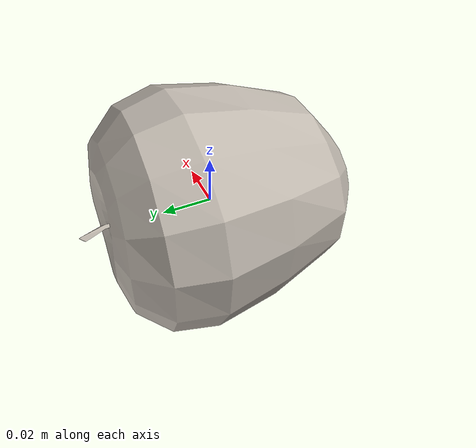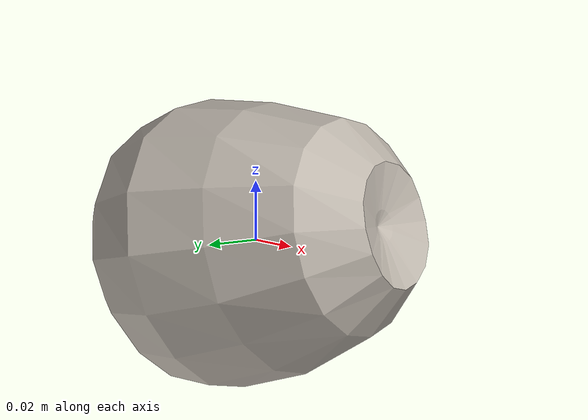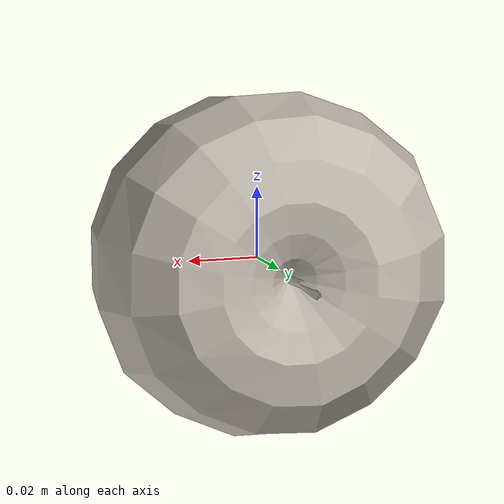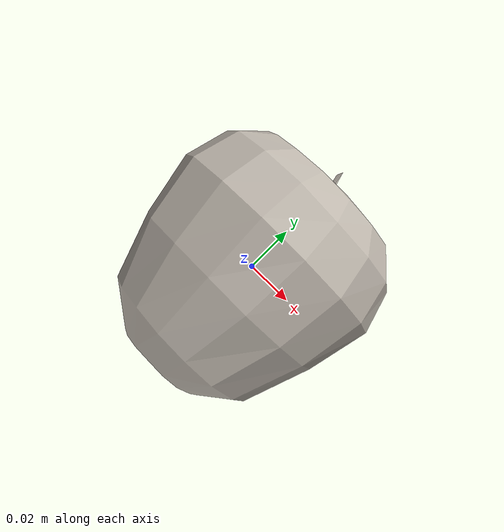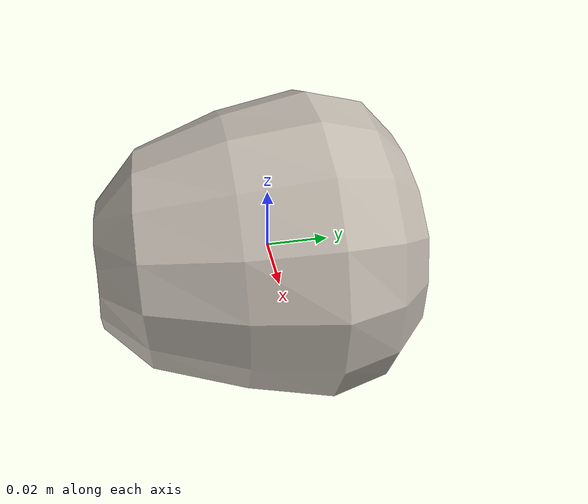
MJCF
<mujoco model="Apple_1">
  <compiler autolimits="true" boundmass="0.01" angle="radian"/>
  <default>
    <default class="/">
      <default class="__VISUAL_MJT__">
        <geom contype="0" conaffinity="0" group="0"/>
      </default>
      <default class="__STRUCTURAL_MJT__">
        <geom contype="8" conaffinity="15" group="4" friction="0.90000000000000002 0.90000000000000002 0.001" solref="0.025000000000000001 1" solimp="0.998 0.998 0.001"/>
      </default>
      <default class="__DYNAMIC_MJT__">
        <geom contype="1" conaffinity="15" group="4" friction="0.90000000000000002 0.90000000000000002 0.001" solref="0.025000000000000001 1" solimp="0.998 0.998 0.001"/>
      </default>
    </default>
  </default>
  <asset>
    <texture name="Apple1_Mat1" type="2d" file="Apple1_AlbedoTransparency1.png"/>
    <material name="material_Apple1_Mat1" class="/" texture="Apple1_Mat1" specular="0.5" shininess="0.5" rgba="1 1 1 1"/>
    <mesh name="Apple_1_apple_a1" class="/" file="Apple_1_apple_a1/Apple_1_apple_a1.obj" scale="1 1 1"/>
  </asset>
  <worldbody>
    <body name="Apple_1">
      <joint name="Apple_1_free" class="/" type="free" pos="0 0 0" axis="0 0 1" stiffness="0" range="0 0" armature="0" damping="0.10000000000000001" frictionloss="0"/>
      <body name="Apple_1_apple_a1" pos="-0 -0.0054999999999999997 0" quat="1 0 0 0">
        <geom name="Apple_1_apple_a1" class="__VISUAL_MJT__" type="mesh" material="material_Apple1_Mat1" shellinertia="false" mesh="Apple_1_apple_a1"/>
        <geom name="Apple_1_PrimitiveCollider_0" class="__DYNAMIC_MJT__" type="capsule" size="0.053005903959274292 0.0037192739546298981" rgba="0 1 0 1" pos="-0 0.0054999999701976776 0" quat="0.70710678118654757 0.70710678118654746 0 0"/>
      </body>
    </body>
  </worldbody>
</mujoco>
